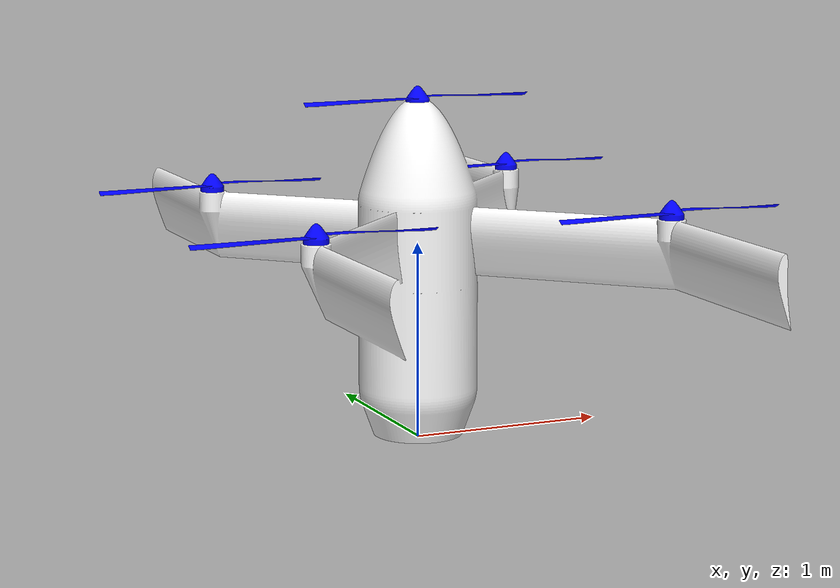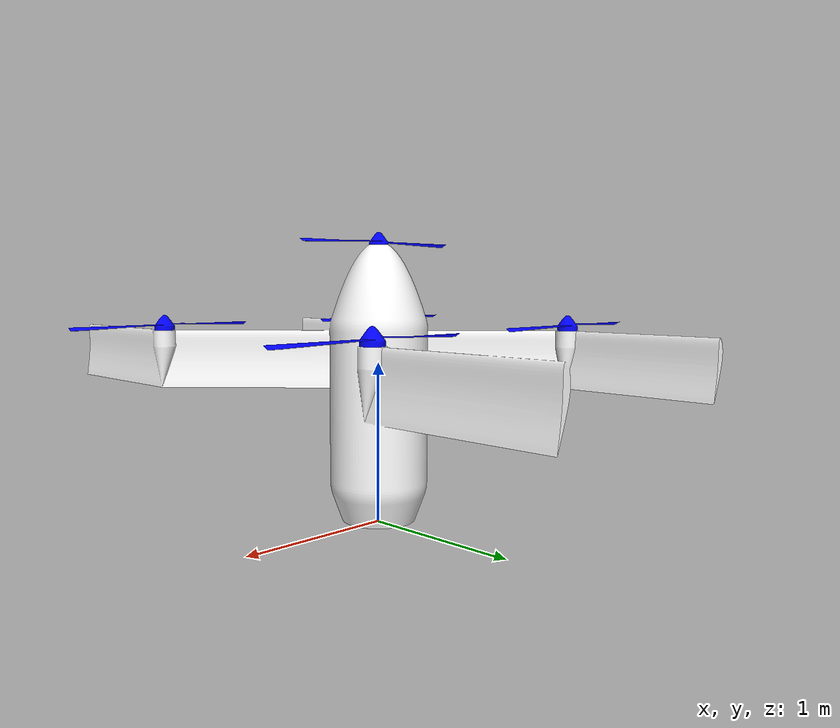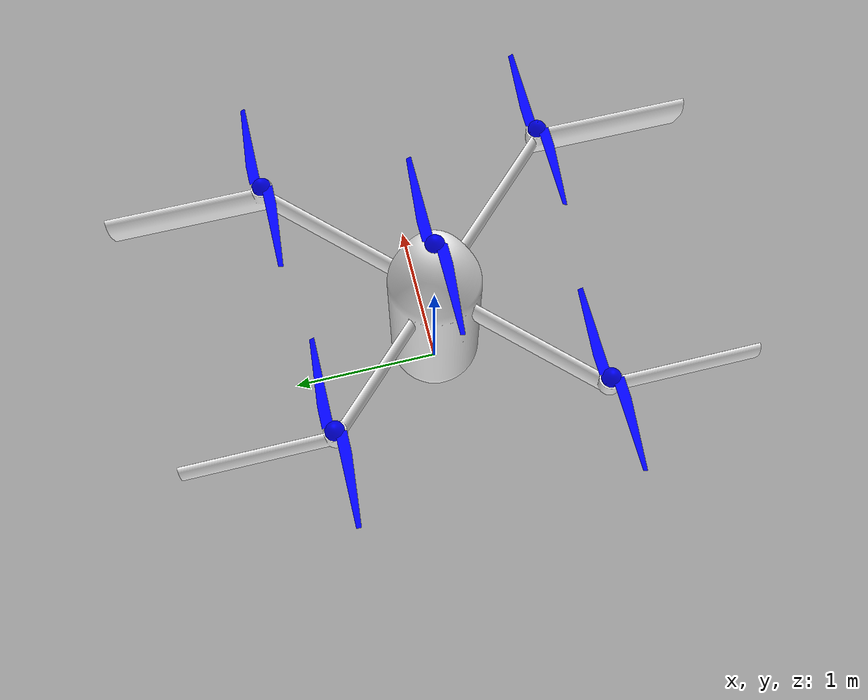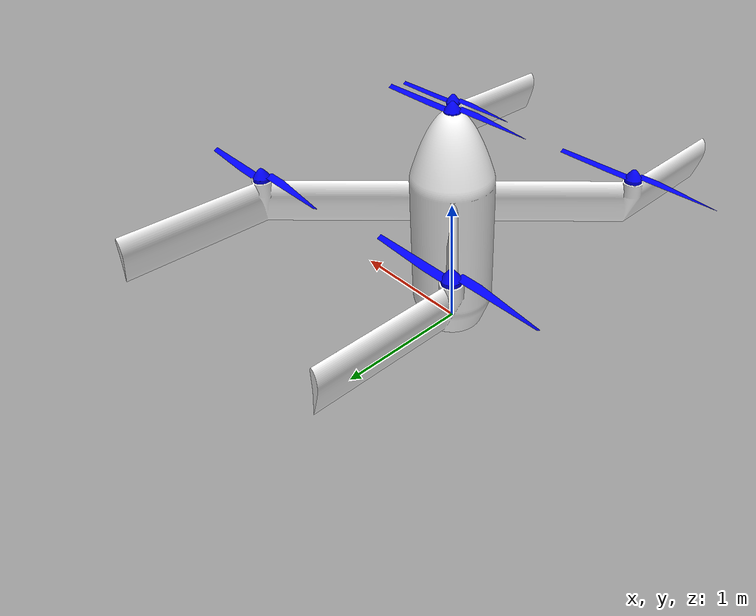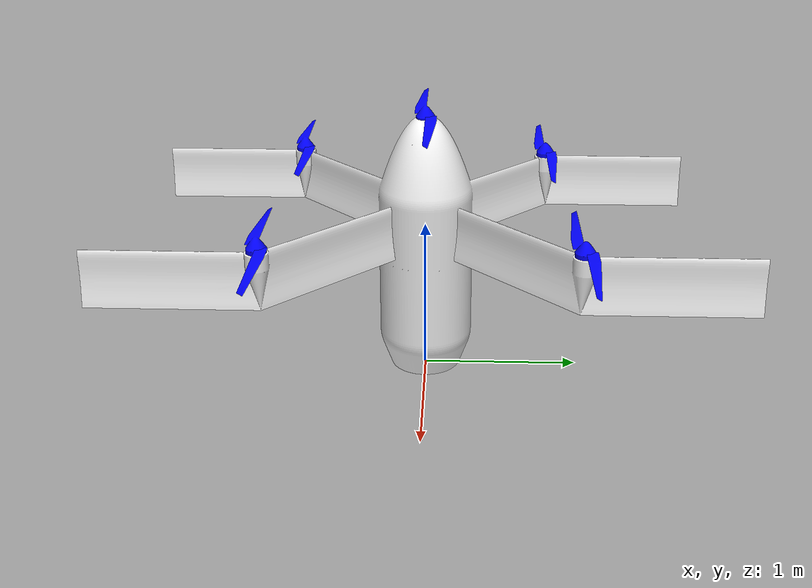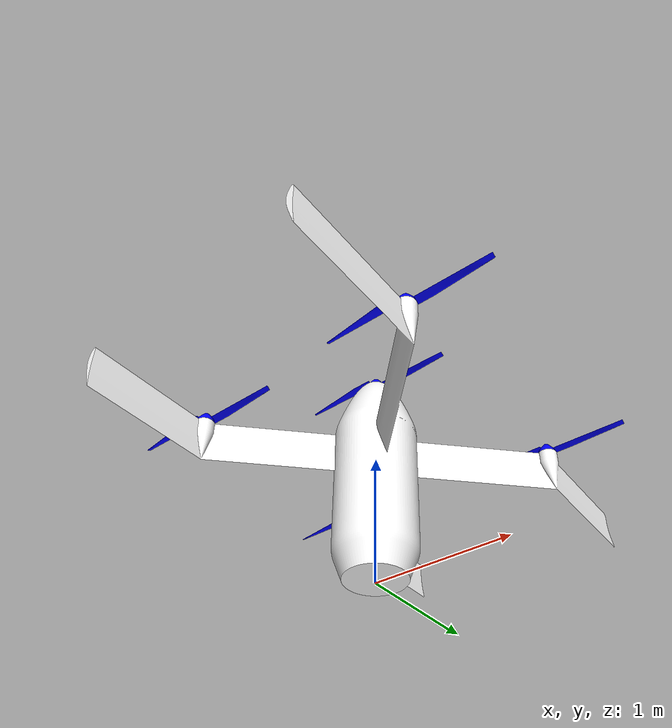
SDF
<?xml version="1.0" ?>
<sdf version='1.11'>
  <model name='hermes'>
    <link name='base_link'>
      <inertial>
        <pose>0 0 0.80000000000000004 0 0 0</pose>
        <mass>1630</mass>
        <inertia>
          <ixx>111.5</ixx>
          <ixy>-9.5407000000000193e-05</ixy>
          <ixz>-0.000113200000002535</ixz>
          <iyy>111.5</iyy>
          <iyz>-0.0031419999999999998</iyz>
          <izz>70.099999999999994</izz>
        </inertia>
      </inertial>
      <collision name='base_link_fixed_joint_lump__frame_collision'>
        <pose>0 0 0.80000000000000004 0 -1.5707963267948966 0</pose>
        <geometry>
          <mesh>
            <scale>1 1 1</scale>
            <uri>file:///home/santos/dev_ws/src/salvos_gz/models/hermes/meshes/hermes_mesh_scaled.stl</uri>
          </mesh>
        </geometry>
      </collision>
      <visual name='base_link_fixed_joint_lump__frame_visual'>
        <pose>0 0 0.80000000000000004 0 -1.5707963267948966 0</pose>
        <geometry>
          <mesh>
            <scale>1 1 1</scale>
            <uri>file:///home/santos/dev_ws/src/salvos_gz/models/hermes/meshes/hermes_mesh_scaled.stl</uri>
          </mesh>
        </geometry>
        <material>
          <diffuse>1 1 1 1</diffuse>
          <ambient>1 1 1 1</ambient>
        </material>
      </visual>
    </link>
    <joint name='fl_rotor_joint' type='revolute'>
      <pose relative_to='base_link'>-0.81010181980132401 0.81000000000000005 1.2998350143343129 -3.1415899999998351 -0.00040734641020577061 -5.4046517934472906e-10</pose>
      <parent>base_link</parent>
      <child>fl_rotor</child>
      <axis>
        <xyz>0 0 1</xyz>
        <limit>
          <effort>0.10000000000000001</effort>
          <velocity>100</velocity>
          <lower>-inf</lower>
          <upper>inf</upper>
        </limit>
        <dynamics>
          <damping>0.01</damping>
          <friction>0.001</friction>
          <spring_reference>0</spring_reference>
          <spring_stiffness>0</spring_stiffness>
        </dynamics>
      </axis>
    </joint>
    <link name='fl_rotor'>
      <pose relative_to='fl_rotor_joint'>0 0 0 0 0 0</pose>
      <inertial>
        <pose>0 0 0 0 0 0</pose>
        <mass>5</mass>
        <inertia>
          <ixx>43</ixx>
          <ixy>-0.048599999999999997</ixy>
          <ixz>-0.048599999999999997</ixz>
          <iyy>34.329999999999998</iyy>
          <iyz>6.0945e-05</iyz>
          <izz>34.329999999999998</izz>
        </inertia>
      </inertial>
      <collision name='fl_rotor_collision'>
        <pose>0 0 0 0 0 0</pose>
        <geometry>
          <mesh>
            <scale>1 1 1</scale>
            <uri>file:///home/santos/dev_ws/src/salvos_gz/models/hermes/meshes/propeller_scaled.stl</uri>
          </mesh>
        </geometry>
      </collision>
      <visual name='fl_rotor_visual'>
        <pose>0 0 0 0 0 0</pose>
        <geometry>
          <mesh>
            <scale>1 1 1</scale>
            <uri>file:///home/santos/dev_ws/src/salvos_gz/models/hermes/meshes/propeller_scaled.stl</uri>
          </mesh>
        </geometry>
        <material>
          <diffuse>0 0 1 1</diffuse>
          <ambient>0 0 1 1</ambient>
        </material>
      </visual>
    </link>
    <joint name='fr_rotor_joint' type='revolute'>
      <pose relative_to='base_link'>-0.88010181834942691 -0.88 1.2998207572100551 -3.1415899999998351 -0.00040734641020577061 -5.4046517934472906e-10</pose>
      <parent>base_link</parent>
      <child>fr_rotor</child>
      <axis>
        <xyz>0 0 1</xyz>
        <limit>
          <effort>0.10000000000000001</effort>
          <velocity>100</velocity>
          <lower>-inf</lower>
          <upper>inf</upper>
        </limit>
        <dynamics>
          <damping>0.01</damping>
          <friction>0.001</friction>
          <spring_reference>0</spring_reference>
          <spring_stiffness>0</spring_stiffness>
        </dynamics>
      </axis>
    </joint>
    <link name='fr_rotor'>
      <pose relative_to='fr_rotor_joint'>0 0 0 0 0 0</pose>
      <inertial>
        <pose>0 0 0 0 0 0</pose>
        <mass>5</mass>
        <inertia>
          <ixx>43</ixx>
          <ixy>-0.048599999999999997</ixy>
          <ixz>-0.048599999999999997</ixz>
          <iyy>34.329999999999998</iyy>
          <iyz>6.0945e-05</iyz>
          <izz>34.329999999999998</izz>
        </inertia>
      </inertial>
      <collision name='fr_rotor_collision'>
        <pose>0 0 0 0 0 0</pose>
        <geometry>
          <mesh>
            <scale>1 1 1</scale>
            <uri>file:///home/santos/dev_ws/src/salvos_gz/models/hermes/meshes/propeller_scaled.stl</uri>
          </mesh>
        </geometry>
      </collision>
      <visual name='fr_rotor_visual'>
        <pose>0 0 0 0 0 0</pose>
        <geometry>
          <mesh>
            <scale>1 1 1</scale>
            <uri>file:///home/santos/dev_ws/src/salvos_gz/models/hermes/meshes/propeller_scaled.stl</uri>
          </mesh>
        </geometry>
        <material>
          <diffuse>0 0 1 1</diffuse>
          <ambient>0 0 1 1</ambient>
        </material>
      </visual>
    </link>
    <joint name='nose_rotor_joint' type='revolute'>
      <pose relative_to='base_link'>-0.00020367320369518721 0 1.799999979258613 -3.1415899999998351 -0.00040734641020577061 -5.4046517934472906e-10</pose>
      <parent>base_link</parent>
      <child>nose_rotor</child>
      <axis>
        <xyz>0 0 1</xyz>
        <limit>
          <effort>0.10000000000000001</effort>
          <velocity>100</velocity>
          <lower>-inf</lower>
          <upper>inf</upper>
        </limit>
        <dynamics>
          <damping>0.01</damping>
          <friction>0.001</friction>
          <spring_reference>0</spring_reference>
          <spring_stiffness>0</spring_stiffness>
        </dynamics>
      </axis>
    </joint>
    <link name='nose_rotor'>
      <pose relative_to='nose_rotor_joint'>0 0 0 0 0 0</pose>
      <inertial>
        <pose>0 0 0 0 0 0</pose>
        <mass>5</mass>
        <inertia>
          <ixx>43</ixx>
          <ixy>-0.048599999999999997</ixy>
          <ixz>-0.048599999999999997</ixz>
          <iyy>34.329999999999998</iyy>
          <iyz>6.0945e-05</iyz>
          <izz>34.329999999999998</izz>
        </inertia>
      </inertial>
      <collision name='nose_rotor_collision'>
        <pose>0 0 0 0 0 0</pose>
        <geometry>
          <mesh>
            <scale>1 1 1</scale>
            <uri>file:///home/santos/dev_ws/src/salvos_gz/models/hermes/meshes/propeller_scaled.stl</uri>
          </mesh>
        </geometry>
      </collision>
      <visual name='nose_rotor_visual'>
        <pose>0 0 0 0 0 0</pose>
        <geometry>
          <mesh>
            <scale>1 1 1</scale>
            <uri>file:///home/santos/dev_ws/src/salvos_gz/models/hermes/meshes/propeller_scaled.stl</uri>
          </mesh>
        </geometry>
        <material>
          <diffuse>0 0 1 1</diffuse>
          <ambient>0 0 1 1</ambient>
        </material>
      </visual>
    </link>
    <joint name='rl_rotor_joint' type='revolute'>
      <pose relative_to='base_link'>0.92989814410866256 -0.93000000000000005 1.3001894057087431 -3.1415899999998351 -0.00040734641020577061 -5.4046517934472906e-10</pose>
      <parent>base_link</parent>
      <child>rl_rotor</child>
      <axis>
        <xyz>0 0 1</xyz>
        <limit>
          <effort>0.10000000000000001</effort>
          <velocity>100</velocity>
          <lower>-inf</lower>
          <upper>inf</upper>
        </limit>
        <dynamics>
          <damping>0.01</damping>
          <friction>0.001</friction>
          <spring_reference>0</spring_reference>
          <spring_stiffness>0</spring_stiffness>
        </dynamics>
      </axis>
    </joint>
    <link name='rl_rotor'>
      <pose relative_to='rl_rotor_joint'>0 0 0 0 0 0</pose>
      <inertial>
        <pose>0 0 0 0 0 0</pose>
        <mass>5</mass>
        <inertia>
          <ixx>43</ixx>
          <ixy>-0.048599999999999997</ixy>
          <ixz>-0.048599999999999997</ixz>
          <iyy>34.329999999999998</iyy>
          <iyz>6.0945e-05</iyz>
          <izz>34.329999999999998</izz>
        </inertia>
      </inertial>
      <collision name='rl_rotor_collision'>
        <pose>0 0 0 0 0 0</pose>
        <geometry>
          <mesh>
            <scale>1 1 1</scale>
            <uri>file:///home/santos/dev_ws/src/salvos_gz/models/hermes/meshes/propeller_scaled.stl</uri>
          </mesh>
        </geometry>
      </collision>
      <visual name='rl_rotor_visual'>
        <pose>0 0 0 0 0 0</pose>
        <geometry>
          <mesh>
            <scale>1 1 1</scale>
            <uri>file:///home/santos/dev_ws/src/salvos_gz/models/hermes/meshes/propeller_scaled.stl</uri>
          </mesh>
        </geometry>
        <material>
          <diffuse>0 0 1 1</diffuse>
          <ambient>0 0 1 1</ambient>
        </material>
      </visual>
    </link>
    <joint name='rr_rotor_joint' type='revolute'>
      <pose relative_to='base_link'>0.92989814410866256 0.93000000000000005 1.3001894057087431 -3.1415899999998351 -0.00040734641020577061 -5.4046517934472906e-10</pose>
      <parent>base_link</parent>
      <child>rr_rotor</child>
      <axis>
        <xyz>0 0 1</xyz>
        <limit>
          <effort>0.10000000000000001</effort>
          <velocity>100</velocity>
          <lower>-inf</lower>
          <upper>inf</upper>
        </limit>
        <dynamics>
          <damping>0.01</damping>
          <friction>0.001</friction>
          <spring_reference>0</spring_reference>
          <spring_stiffness>0</spring_stiffness>
        </dynamics>
      </axis>
    </joint>
    <link name='rr_rotor'>
      <pose relative_to='rr_rotor_joint'>0 0 0 0 0 0</pose>
      <inertial>
        <pose>0 0 0 0 0 0</pose>
        <mass>5</mass>
        <inertia>
          <ixx>43</ixx>
          <ixy>-0.048599999999999997</ixy>
          <ixz>-0.048599999999999997</ixz>
          <iyy>34.329999999999998</iyy>
          <iyz>6.0945e-05</iyz>
          <izz>34.329999999999998</izz>
        </inertia>
      </inertial>
      <collision name='rr_rotor_collision'>
        <pose>0 0 0 0 0 0</pose>
        <geometry>
          <mesh>
            <scale>1 1 1</scale>
            <uri>file:///home/santos/dev_ws/src/salvos_gz/models/hermes/meshes/propeller_scaled.stl</uri>
          </mesh>
        </geometry>
      </collision>
      <visual name='rr_rotor_visual'>
        <pose>0 0 0 0 0 0</pose>
        <geometry>
          <mesh>
            <scale>1 1 1</scale>
            <uri>file:///home/santos/dev_ws/src/salvos_gz/models/hermes/meshes/propeller_scaled.stl</uri>
          </mesh>
        </geometry>
        <material>
          <diffuse>0 0 1 1</diffuse>
          <ambient>0 0 1 1</ambient>
        </material>
      </visual>
    </link>
    <plugin name='gz::sim::systems::JointController' filename='libgz-sim-joint-controller-system.so'>
      <joint_name>nose_rotor_joint</joint_name>
      <topic>/model/hermes/joint/nose_rotor_joint/cmd_vel</topic>
    </plugin>
    <plugin name='gz::sim::systems::JointController' filename='libgz-sim-joint-controller-system.so'>
      <joint_name>fl_rotor_joint</joint_name>
      <topic>/model/hermes/joint/fl_rotor_joint/cmd_vel</topic>
    </plugin>
    <plugin name='gz::sim::systems::JointController' filename='libgz-sim-joint-controller-system.so'>
      <joint_name>fr_rotor_joint</joint_name>
      <topic>/model/hermes/joint/fr_rotor_joint/cmd_vel</topic>
    </plugin>
    <plugin name='gz::sim::systems::JointController' filename='libgz-sim-joint-controller-system.so'>
      <joint_name>rl_rotor_joint</joint_name>
      <topic>/model/hermes/joint/rl_rotor_joint/cmd_vel</topic>
    </plugin>
    <plugin name='gz::sim::systems::JointController' filename='libgz-sim-joint-controller-system.so'>
      <joint_name>rr_rotor_joint</joint_name>
      <topic>/model/hermes/joint/rr_rotor_joint/cmd_vel</topic>
    </plugin>
    <frame name='dummy_joint' attached_to='base_link'>
      <pose>0 0 0.80000000000000004 3.1415926535897931 -1.5705926535909005 3.1415926535897931</pose>
    </frame>
    <frame name='frame' attached_to='dummy_joint'>
      <pose>0 0 0 0 0 0</pose>
    </frame>
  </model>
</sdf>
